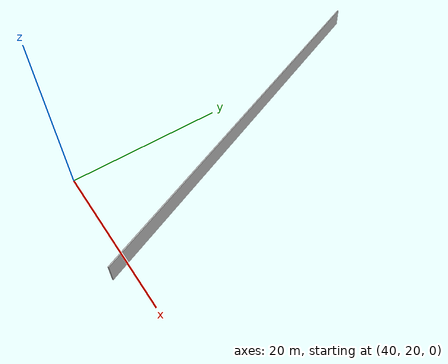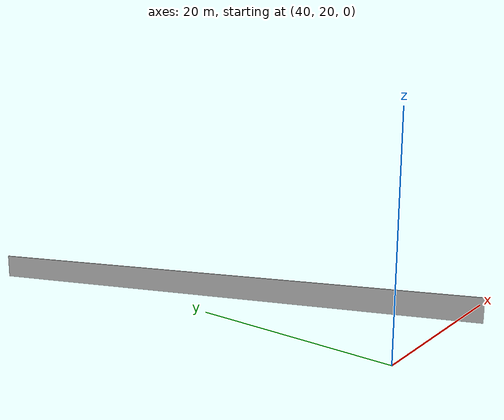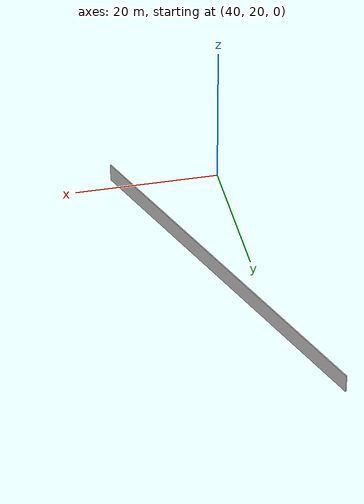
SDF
<?xml version="1.0" ?>
<sdf version="1.6">
  <model name="sps_4725">
    <pose frame="">0 0 0 0 -0 0</pose>
    <static>0</static>
    <self_collide>0</self_collide>
    <allow_auto_disable>0</allow_auto_disable>
    <link name="Wall378">
      <kinematic>0</kinematic>
      <gravity>1</gravity>
      <self_collide>0</self_collide>
      <collision name="collision">
        <geometry>
          <box>
            <size>53.8897 0.15 2.5</size>
          </box>
        </geometry>
        <pose frame="">0 0 0 0 -0 0</pose>
      </collision>
      <visual name="visual">
        <geometry>
          <box>
            <size>53.8897 0.15 2.5</size>
          </box>
        </geometry>
        <pose frame="">0 0 0 0 -0 0</pose>
        <cast_shadows>1</cast_shadows>
        <transparency>0.0</transparency>
      </visual>
      <pose frame="">44.5717 42.8724 1.25 0 0 -1.18648</pose>
    </link>
  </model>
</sdf>
